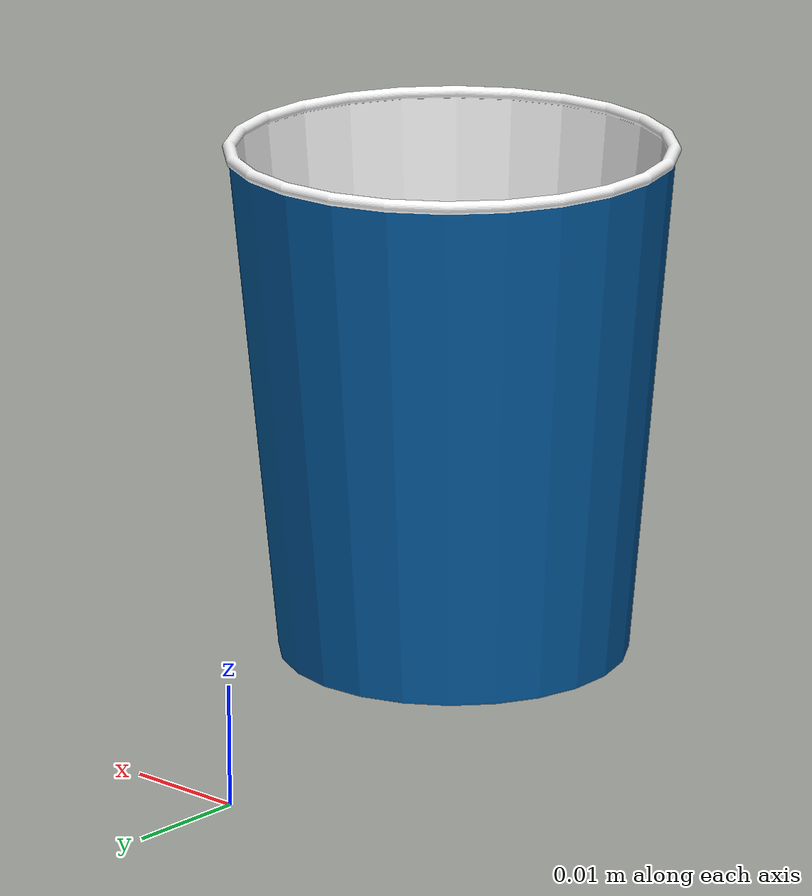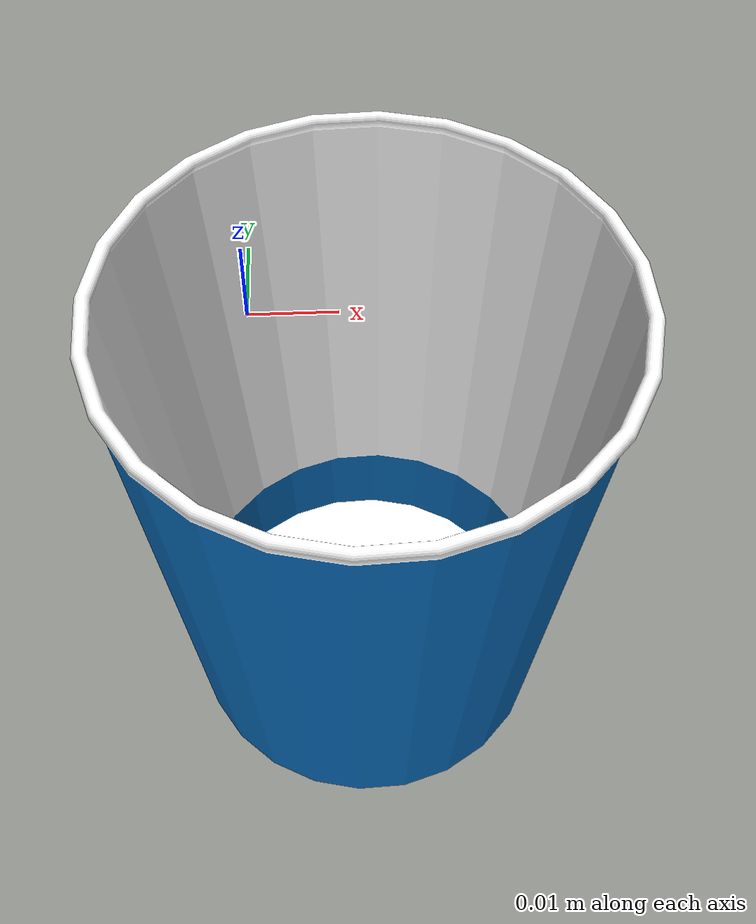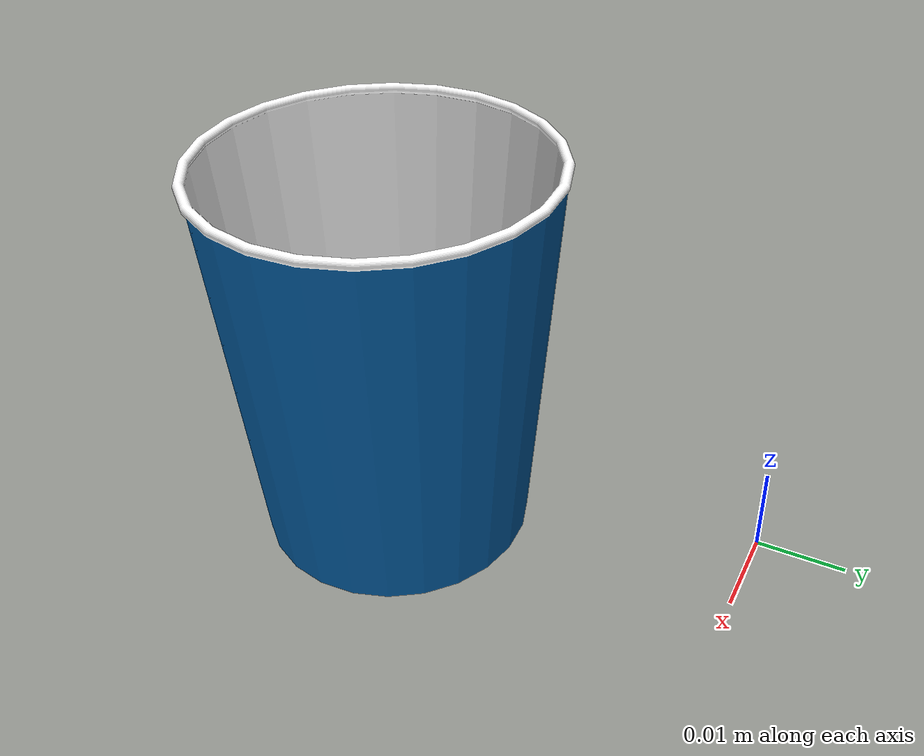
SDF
<?xml version="1.0" ?>
<sdf version="1.6">
  <model name="papercup">
    <static>false</static>
    <link name="link">
      <inertial>
        <mass>0.010</mass>
        <inertia>
          <ixx>4.7583e-005</ixx>
          <ixy>0</ixy>
          <ixz>0</ixz>
          <iyy>4.7583e-005</iyy>
          <iyz>0</iyz>
          <izz>3.1250e-006</izz>
        </inertia>
      </inertial>
      <collision name="collision">
        <pose>0.01 -0.039 0.022 0 0 0</pose>
        <geometry>
          <cylinder>
            <radius>0.015</radius>
            <length>0.045</length>
          </cylinder>
        </geometry>
      </collision>
      <visual name="visual">
        <geometry>
          <mesh>
            <uri>model://papercup/meshes/papercup.dae</uri>
	    <scale>0.17 0.17 0.17</scale>
          </mesh>
        </geometry>
      </visual>
    </link>
  </model>
</sdf>
